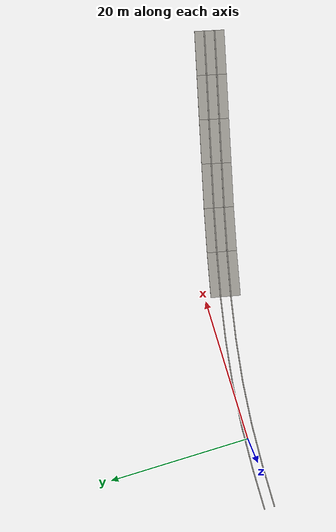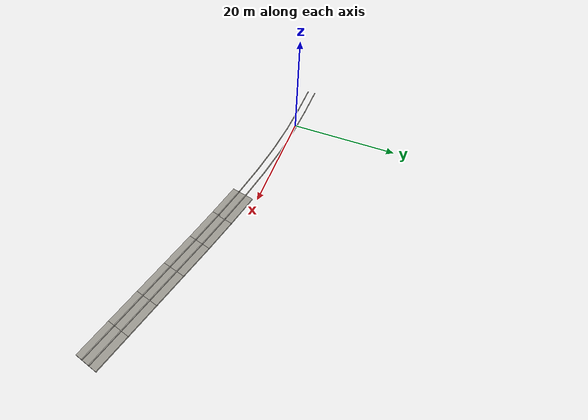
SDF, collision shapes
<sdf version="1.9">
 <model name="railway_turnout">
  <static>true</static>
  <plugin filename="gz-sim-label-system" name="gz::sim::systems::Label"><label>10</label></plugin>
  <link name="turnout_rails_and_ballast">
   <visual name="ballast_transition">
    <geometry><mesh><uri>model://railway_turnout/meshes/ballast_transition.obj</uri></mesh></geometry>
    <material>
     <ambient>0.38 0.38 0.36 1</ambient>
     <diffuse>0.60 0.59 0.56 1</diffuse>
     <pbr>
      <metal>
       <albedo_map>model://track_12m/materials/textures/ballast_albedo.png</albedo_map>
       <roughness>0.98</roughness>
       <metalness>0</metalness>
      </metal>
     </pbr>
    </material>
   </visual>
   <visual name="transition_sleeper_00">
    <pose>-5.700 -0.0390 0.235 0 0 0</pose>
    <geometry>
     <mesh><uri>model://pc_sleeper/meshes/pc_sleeper_concrete.obj</uri><scale>1 1.032465 1</scale></mesh>
    </geometry>
    <material>
     <ambient>0.47 0.47 0.45 1</ambient>
     <diffuse>0.68 0.68 0.65 1</diffuse>
     <pbr><metal><roughness>0.92</roughness><metalness>0</metalness></metal></pbr>
    </material>
   </visual>
   <visual name="transition_sleeper_01">
    <pose>-5.100 -0.0477 0.235 0 0 0</pose>
    <geometry>
     <mesh><uri>model://pc_sleeper/meshes/pc_sleeper_concrete.obj</uri><scale>1 1.039757 1</scale></mesh>
    </geometry>
    <material>
     <ambient>0.47 0.47 0.45 1</ambient>
     <diffuse>0.68 0.68 0.65 1</diffuse>
     <pbr><metal><roughness>0.92</roughness><metalness>0</metalness></metal></pbr>
    </material>
   </visual>
   <visual name="transition_sleeper_02">
    <pose>-4.500 -0.0565 0.235 0 0 0</pose>
    <geometry>
     <mesh><uri>model://pc_sleeper/meshes/pc_sleeper_concrete.obj</uri><scale>1 1.047049 1</scale></mesh>
    </geometry>
    <material>
     <ambient>0.47 0.47 0.45 1</ambient>
     <diffuse>0.68 0.68 0.65 1</diffuse>
     <pbr><metal><roughness>0.92</roughness><metalness>0</metalness></metal></pbr>
    </material>
   </visual>
   <visual name="transition_sleeper_03">
    <pose>-3.900 -0.0652 0.235 0 0 0</pose>
    <geometry>
     <mesh><uri>model://pc_sleeper/meshes/pc_sleeper_concrete.obj</uri><scale>1 1.054340 1</scale></mesh>
    </geometry>
    <material>
     <ambient>0.47 0.47 0.45 1</ambient>
     <diffuse>0.68 0.68 0.65 1</diffuse>
     <pbr><metal><roughness>0.92</roughness><metalness>0</metalness></metal></pbr>
    </material>
   </visual>
   <visual name="transition_sleeper_04">
    <pose>-3.300 -0.0740 0.235 0 0 0</pose>
    <geometry>
     <mesh><uri>model://pc_sleeper/meshes/pc_sleeper_concrete.obj</uri><scale>1 1.061632 1</scale></mesh>
    </geometry>
    <material>
     <ambient>0.47 0.47 0.45 1</ambient>
     <diffuse>0.68 0.68 0.65 1</diffuse>
     <pbr><metal><roughness>0.92</roughness><metalness>0</metalness></metal></pbr>
    </material>
   </visual>
   <visual name="transition_sleeper_05">
    <pose>-2.700 -0.0827 0.235 0 0 0</pose>
    <geometry>
     <mesh><uri>model://pc_sleeper/meshes/pc_sleeper_concrete.obj</uri><scale>1 1.068924 1</scale></mesh>
    </geometry>
    <material>
     <ambient>0.47 0.47 0.45 1</ambient>
     <diffuse>0.68 0.68 0.65 1</diffuse>
     <pbr><metal><roughness>0.92</roughness><metalness>0</metalness></metal></pbr>
    </material>
   </visual>
   <visual name="transition_sleeper_06">
    <pose>-2.100 -0.0915 0.235 0 0 0</pose>
    <geometry>
     <mesh><uri>model://pc_sleeper/meshes/pc_sleeper_concrete.obj</uri><scale>1 1.076215 1</scale></mesh>
    </geometry>
    <material>
     <ambient>0.47 0.47 0.45 1</ambient>
     <diffuse>0.68 0.68 0.65 1</diffuse>
     <pbr><metal><roughness>0.92</roughness><metalness>0</metalness></metal></pbr>
    </material>
   </visual>
   <visual name="transition_sleeper_07">
    <pose>-1.500 -0.1002 0.235 0 0 0</pose>
    <geometry>
     <mesh><uri>model://pc_sleeper/meshes/pc_sleeper_concrete.obj</uri><scale>1 1.083507 1</scale></mesh>
    </geometry>
    <material>
     <ambient>0.47 0.47 0.45 1</ambient>
     <diffuse>0.68 0.68 0.65 1</diffuse>
     <pbr><metal><roughness>0.92</roughness><metalness>0</metalness></metal></pbr>
    </material>
   </visual>
   <visual name="transition_sleeper_08">
    <pose>-0.900 -0.1109 0.235 0 0 0</pose>
    <geometry>
     <mesh><uri>model://pc_sleeper/meshes/pc_sleeper_concrete.obj</uri><scale>1 1.092431 1</scale></mesh>
    </geometry>
    <material>
     <ambient>0.47 0.47 0.45 1</ambient>
     <diffuse>0.68 0.68 0.65 1</diffuse>
     <pbr><metal><roughness>0.92</roughness><metalness>0</metalness></metal></pbr>
    </material>
   </visual>
   <visual name="transition_sleeper_09">
    <pose>-0.300 -0.1314 0.235 0 0 0</pose>
    <geometry>
     <mesh><uri>model://pc_sleeper/meshes/pc_sleeper_concrete.obj</uri><scale>1 1.109514 1</scale></mesh>
    </geometry>
    <material>
     <ambient>0.47 0.47 0.45 1</ambient>
     <diffuse>0.68 0.68 0.65 1</diffuse>
     <pbr><metal><roughness>0.92</roughness><metalness>0</metalness></metal></pbr>
    </material>
   </visual>
   <visual name="transition_sleeper_10">
    <pose>0.300 -0.1519 0.235 0 0 0</pose>
    <geometry>
     <mesh><uri>model://pc_sleeper/meshes/pc_sleeper_concrete.obj</uri><scale>1 1.126597 1</scale></mesh>
    </geometry>
    <material>
     <ambient>0.47 0.47 0.45 1</ambient>
     <diffuse>0.68 0.68 0.65 1</diffuse>
     <pbr><metal><roughness>0.92</roughness><metalness>0</metalness></metal></pbr>
    </material>
   </visual>
   <visual name="transition_sleeper_11">
    <pose>0.900 -0.1724 0.235 0 0 0</pose>
    <geometry>
     <mesh><uri>model://pc_sleeper/meshes/pc_sleeper_concrete.obj</uri><scale>1 1.143681 1</scale></mesh>
    </geometry>
    <material>
     <ambient>0.47 0.47 0.45 1</ambient>
     <diffuse>0.68 0.68 0.65 1</diffuse>
     <pbr><metal><roughness>0.92</roughness><metalness>0</metalness></metal></pbr>
    </material>
   </visual>
   <visual name="transition_sleeper_12">
    <pose>1.500 -0.1929 0.235 0 0 0</pose>
    <geometry>
     <mesh><uri>model://pc_sleeper/meshes/pc_sleeper_concrete.obj</uri><scale>1 1.160764 1</scale></mesh>
    </geometry>
    <material>
     <ambient>0.47 0.47 0.45 1</ambient>
     <diffuse>0.68 0.68 0.65 1</diffuse>
     <pbr><metal><roughness>0.92</roughness><metalness>0</metalness></metal></pbr>
    </material>
   </visual>
   <visual name="transition_sleeper_13">
    <pose>2.100 -0.2134 0.235 0 0 0</pose>
    <geometry>
     <mesh><uri>model://pc_sleeper/meshes/pc_sleeper_concrete.obj</uri><scale>1 1.177847 1</scale></mesh>
    </geometry>
    <material>
     <ambient>0.47 0.47 0.45 1</ambient>
     <diffuse>0.68 0.68 0.65 1</diffuse>
     <pbr><metal><roughness>0.92</roughness><metalness>0</metalness></metal></pbr>
    </material>
   </visual>
   <visual name="transition_sleeper_14">
    <pose>2.700 -0.2339 0.235 0 0 0</pose>
    <geometry>
     <mesh><uri>model://pc_sleeper/meshes/pc_sleeper_concrete.obj</uri><scale>1 1.194931 1</scale></mesh>
    </geometry>
    <material>
     <ambient>0.47 0.47 0.45 1</ambient>
     <diffuse>0.68 0.68 0.65 1</diffuse>
     <pbr><metal><roughness>0.92</roughness><metalness>0</metalness></metal></pbr>
    </material>
   </visual>
   <visual name="transition_sleeper_15">
    <pose>3.300 -0.2544 0.235 0 0 0</pose>
    <geometry>
     <mesh><uri>model://pc_sleeper/meshes/pc_sleeper_concrete.obj</uri><scale>1 1.212014 1</scale></mesh>
    </geometry>
    <material>
     <ambient>0.47 0.47 0.45 1</ambient>
     <diffuse>0.68 0.68 0.65 1</diffuse>
     <pbr><metal><roughness>0.92</roughness><metalness>0</metalness></metal></pbr>
    </material>
   </visual>
   <visual name="transition_sleeper_16">
    <pose>3.900 -0.2749 0.235 0 0 0</pose>
    <geometry>
     <mesh><uri>model://pc_sleeper/meshes/pc_sleeper_concrete.obj</uri><scale>1 1.229097 1</scale></mesh>
    </geometry>
    <material>
     <ambient>0.47 0.47 0.45 1</ambient>
     <diffuse>0.68 0.68 0.65 1</diffuse>
     <pbr><metal><roughness>0.92</roughness><metalness>0</metalness></metal></pbr>
    </material>
   </visual>
   <visual name="transition_sleeper_17">
    <pose>4.500 -0.2954 0.235 0 0 0</pose>
    <geometry>
     <mesh><uri>model://pc_sleeper/meshes/pc_sleeper_concrete.obj</uri><scale>1 1.246181 1</scale></mesh>
    </geometry>
    <material>
     <ambient>0.47 0.47 0.45 1</ambient>
     <diffuse>0.68 0.68 0.65 1</diffuse>
     <pbr><metal><roughness>0.92</roughness><metalness>0</metalness></metal></pbr>
    </material>
   </visual>
   <visual name="transition_sleeper_18">
    <pose>5.100 -0.3183 0.235 0 0 0</pose>
    <geometry>
     <mesh><uri>model://pc_sleeper/meshes/pc_sleeper_concrete.obj</uri><scale>1 1.265278 1</scale></mesh>
    </geometry>
    <material>
     <ambient>0.47 0.47 0.45 1</ambient>
     <diffuse>0.68 0.68 0.65 1</diffuse>
     <pbr><metal><roughness>0.92</roughness><metalness>0</metalness></metal></pbr>
    </material>
   </visual>
   <visual name="transition_sleeper_19">
    <pose>5.700 -0.3533 0.235 0 0 0</pose>
    <geometry>
     <mesh><uri>model://pc_sleeper/meshes/pc_sleeper_concrete.obj</uri><scale>1 1.294444 1</scale></mesh>
    </geometry>
    <material>
     <ambient>0.47 0.47 0.45 1</ambient>
     <diffuse>0.68 0.68 0.65 1</diffuse>
     <pbr><metal><roughness>0.92</roughness><metalness>0</metalness></metal></pbr>
    </material>
   </visual>
   <visual name="transition_sleeper_20">
    <pose>6.300 -0.3883 0.235 0 0 0</pose>
    <geometry>
     <mesh><uri>model://pc_sleeper/meshes/pc_sleeper_concrete.obj</uri><scale>1 1.323611 1</scale></mesh>
    </geometry>
    <material>
     <ambient>0.47 0.47 0.45 1</ambient>
     <diffuse>0.68 0.68 0.65 1</diffuse>
     <pbr><metal><roughness>0.92</roughness><metalness>0</metalness></metal></pbr>
    </material>
   </visual>
   <visual name="transition_sleeper_21">
    <pose>6.900 -0.4233 0.235 0 0 0</pose>
    <geometry>
     <mesh><uri>model://pc_sleeper/meshes/pc_sleeper_concrete.obj</uri><scale>1 1.352778 1</scale></mesh>
    </geometry>
    <material>
     <ambient>0.47 0.47 0.45 1</ambient>
     <diffuse>0.68 0.68 0.65 1</diffuse>
     <pbr><metal><roughness>0.92</roughness><metalness>0</metalness></metal></pbr>
    </material>
   </visual>
   <visual name="transition_sleeper_22">
    <pose>7.500 -0.4583 0.235 0 0 0</pose>
    <geometry>
     <mesh><uri>model://pc_sleeper/meshes/pc_sleeper_concrete.obj</uri><scale>1 1.381944 1</scale></mesh>
    </geometry>
    <material>
     <ambient>0.47 0.47 0.45 1</ambient>
     <diffuse>0.68 0.68 0.65 1</diffuse>
     <pbr><metal><roughness>0.92</roughness><metalness>0</metalness></metal></pbr>
    </material>
   </visual>
   <visual name="transition_sleeper_23">
    <pose>8.100 -0.4933 0.235 0 0 0</pose>
    <geometry>
     <mesh><uri>model://pc_sleeper/meshes/pc_sleeper_concrete.obj</uri><scale>1 1.411111 1</scale></mesh>
    </geometry>
    <material>
     <ambient>0.47 0.47 0.45 1</ambient>
     <diffuse>0.68 0.68 0.65 1</diffuse>
     <pbr><metal><roughness>0.92</roughness><metalness>0</metalness></metal></pbr>
    </material>
   </visual>
   <visual name="transition_sleeper_24">
    <pose>8.700 -0.5283 0.235 0 0 0</pose>
    <geometry>
     <mesh><uri>model://pc_sleeper/meshes/pc_sleeper_concrete.obj</uri><scale>1 1.440278 1</scale></mesh>
    </geometry>
    <material>
     <ambient>0.47 0.47 0.45 1</ambient>
     <diffuse>0.68 0.68 0.65 1</diffuse>
     <pbr><metal><roughness>0.92</roughness><metalness>0</metalness></metal></pbr>
    </material>
   </visual>
   <visual name="transition_sleeper_25">
    <pose>9.300 -0.5633 0.235 0 0 0</pose>
    <geometry>
     <mesh><uri>model://pc_sleeper/meshes/pc_sleeper_concrete.obj</uri><scale>1 1.469444 1</scale></mesh>
    </geometry>
    <material>
     <ambient>0.47 0.47 0.45 1</ambient>
     <diffuse>0.68 0.68 0.65 1</diffuse>
     <pbr><metal><roughness>0.92</roughness><metalness>0</metalness></metal></pbr>
    </material>
   </visual>
   <visual name="transition_sleeper_26">
    <pose>9.900 -0.5983 0.235 0 0 0</pose>
    <geometry>
     <mesh><uri>model://pc_sleeper/meshes/pc_sleeper_concrete.obj</uri><scale>1 1.498611 1</scale></mesh>
    </geometry>
    <material>
     <ambient>0.47 0.47 0.45 1</ambient>
     <diffuse>0.68 0.68 0.65 1</diffuse>
     <pbr><metal><roughness>0.92</roughness><metalness>0</metalness></metal></pbr>
    </material>
   </visual>
   <visual name="transition_sleeper_27">
    <pose>10.500 -0.6333 0.235 0 0 0</pose>
    <geometry>
     <mesh><uri>model://pc_sleeper/meshes/pc_sleeper_concrete.obj</uri><scale>1 1.527778 1</scale></mesh>
    </geometry>
    <material>
     <ambient>0.47 0.47 0.45 1</ambient>
     <diffuse>0.68 0.68 0.65 1</diffuse>
     <pbr><metal><roughness>0.92</roughness><metalness>0</metalness></metal></pbr>
    </material>
   </visual>
   <visual name="transition_sleeper_28">
    <pose>11.100 -0.6706 0.235 0 0 0</pose>
    <geometry>
     <mesh><uri>model://pc_sleeper/meshes/pc_sleeper_concrete.obj</uri><scale>1 1.558854 1</scale></mesh>
    </geometry>
    <material>
     <ambient>0.47 0.47 0.45 1</ambient>
     <diffuse>0.68 0.68 0.65 1</diffuse>
     <pbr><metal><roughness>0.92</roughness><metalness>0</metalness></metal></pbr>
    </material>
   </visual>
   <visual name="transition_sleeper_29">
    <pose>11.700 -0.7194 0.235 0 0 0</pose>
    <geometry>
     <mesh><uri>model://pc_sleeper/meshes/pc_sleeper_concrete.obj</uri><scale>1 1.599479 1</scale></mesh>
    </geometry>
    <material>
     <ambient>0.47 0.47 0.45 1</ambient>
     <diffuse>0.68 0.68 0.65 1</diffuse>
     <pbr><metal><roughness>0.92</roughness><metalness>0</metalness></metal></pbr>
    </material>
   </visual>
   <visual name="transition_sleeper_30">
    <pose>12.300 -0.7681 0.235 0 0 0</pose>
    <geometry>
     <mesh><uri>model://pc_sleeper/meshes/pc_sleeper_concrete.obj</uri><scale>1 1.640104 1</scale></mesh>
    </geometry>
    <material>
     <ambient>0.47 0.47 0.45 1</ambient>
     <diffuse>0.68 0.68 0.65 1</diffuse>
     <pbr><metal><roughness>0.92</roughness><metalness>0</metalness></metal></pbr>
    </material>
   </visual>
   <visual name="transition_sleeper_31">
    <pose>12.900 -0.8169 0.235 0 0 0</pose>
    <geometry>
     <mesh><uri>model://pc_sleeper/meshes/pc_sleeper_concrete.obj</uri><scale>1 1.680729 1</scale></mesh>
    </geometry>
    <material>
     <ambient>0.47 0.47 0.45 1</ambient>
     <diffuse>0.68 0.68 0.65 1</diffuse>
     <pbr><metal><roughness>0.92</roughness><metalness>0</metalness></metal></pbr>
    </material>
   </visual>
   <visual name="transition_sleeper_32">
    <pose>13.500 -0.8656 0.235 0 0 0</pose>
    <geometry>
     <mesh><uri>model://pc_sleeper/meshes/pc_sleeper_concrete.obj</uri><scale>1 1.721354 1</scale></mesh>
    </geometry>
    <material>
     <ambient>0.47 0.47 0.45 1</ambient>
     <diffuse>0.68 0.68 0.65 1</diffuse>
     <pbr><metal><roughness>0.92</roughness><metalness>0</metalness></metal></pbr>
    </material>
   </visual>
   <visual name="transition_sleeper_33">
    <pose>14.100 -0.9144 0.235 0 0 0</pose>
    <geometry>
     <mesh><uri>model://pc_sleeper/meshes/pc_sleeper_concrete.obj</uri><scale>1 1.761979 1</scale></mesh>
    </geometry>
    <material>
     <ambient>0.47 0.47 0.45 1</ambient>
     <diffuse>0.68 0.68 0.65 1</diffuse>
     <pbr><metal><roughness>0.92</roughness><metalness>0</metalness></metal></pbr>
    </material>
   </visual>
   <collision name="rail_l_collision_0">
    <pose>-6.9904 0.6774 0.516 0 0 -0.013333</pose>
    <geometry><box><size>6.0505 0.145 0.192</size></box></geometry>
   </collision>
   <collision name="rail_r_collision_0">
    <pose>-7.009566 -0.757436 0.516000 0.000000 0.000000 -0.013333</pose>
    <geometry><box><size>6.0505 0.145 0.192</size></box></geometry>
   </collision>
   <collision name="rail_l_collision_1">
    <pose>-0.9677 0.5018 0.516 0 0 -0.044970</pose>
    <geometry><box><size>6.0561 0.145 0.192</size></box></geometry>
   </collision>
   <collision name="rail_r_collision_1">
    <pose>-1.032255 -0.931775 0.516000 0.000000 0.000000 -0.044970</pose>
    <geometry><box><size>6.0561 0.145 0.192</size></box></geometry>
   </collision>
   <collision name="rail_l_collision_2">
    <pose>5.0655 0.0895 0.516 0 0 -0.091411</pose>
    <geometry><box><size>6.0752 0.145 0.192</size></box></geometry>
   </collision>
   <collision name="rail_r_collision_2">
    <pose>4.934504 -1.339504 0.516000 0.000000 0.000000 -0.091411</pose>
    <geometry><box><size>6.0752 0.145 0.192</size></box></geometry>
   </collision>
   <collision name="rail_l_collision_3">
    <pose>11.1006 -0.6146 0.516 0 0 -0.140730</pose>
    <geometry><box><size>6.1099 0.145 0.192</size></box></geometry>
   </collision>
   <collision name="rail_r_collision_3">
    <pose>10.899359 -2.035407 0.516000 0.000000 0.000000 -0.140730</pose>
    <geometry><box><size>6.1099 0.145 0.192</size></box></geometry>
   </collision>
   <collision name="rail_l_collision_4">
    <pose>17.1294 -1.5943 0.516 0 0 -0.181320</pose>
    <geometry><box><size>6.1500 0.145 0.192</size></box></geometry>
   </collision>
   <collision name="rail_r_collision_4">
    <pose>16.870615 -3.005738 0.516000 0.000000 0.000000 -0.181320</pose>
    <geometry><box><size>6.1500 0.145 0.192</size></box></geometry>
   </collision>
   <collision name="ballast_collision_5">
    <pose>23.0000 -3.5000 0.17 0 0 -0.213369</pose>
    <geometry><box><size>6.2892 4.15 0.34</size></box></geometry>
   </collision>
   <visual name="ballast_5">
    <pose>23.000000 -3.500000 0.000000 0.000000 0.000000 -0.213369</pose>
    <geometry>
     <mesh><uri>model://track_12m/meshes/ballast_bed.obj</uri><scale>0.5266000 1 1</scale></mesh>
    </geometry>
    <material>
     <diffuse>0.60 0.59 0.56 1</diffuse>
     <pbr>
      <metal>
       <albedo_map>model://track_12m/materials/textures/ballast_albedo.png</albedo_map>
       <roughness>0.98</roughness>
       <metalness>0</metalness>
      </metal>
     </pbr>
     <ambient>0.38 0.38 0.36 1</ambient>
    </material>
   </visual>
   <collision name="rail_l_collision_5">
    <pose>23.1519 -2.7988 0.516 0 0 -0.213369</pose>
    <geometry><box><size>6.1892 0.145 0.192</size></box></geometry>
   </collision>
   <collision name="rail_r_collision_5">
    <pose>22.848067 -4.201229 0.516000 0.000000 0.000000 -0.213369</pose>
    <geometry><box><size>6.1892 0.145 0.192</size></box></geometry>
   </collision>
   <collision name="ballast_collision_6">
    <pose>29.0000 -4.8500 0.17 0 0 -0.229232</pose>
    <geometry><box><size>6.3112 4.15 0.34</size></box></geometry>
   </collision>
   <visual name="ballast_6">
    <pose>29.000000 -4.850000 0.000000 0.000000 0.000000 -0.229232</pose>
    <geometry>
     <mesh><uri>model://track_12m/meshes/ballast_bed.obj</uri><scale>0.5284333 1 1</scale></mesh>
    </geometry>
    <material>
     <diffuse>0.60 0.59 0.56 1</diffuse>
     <pbr>
      <metal>
       <albedo_map>model://track_12m/materials/textures/ballast_albedo.png</albedo_map>
       <roughness>0.98</roughness>
       <metalness>0</metalness>
      </metal>
     </pbr>
     <ambient>0.38 0.38 0.36 1</ambient>
    </material>
   </visual>
   <collision name="rail_l_collision_6">
    <pose>29.1630 -4.1513 0.516 0 0 -0.229232</pose>
    <geometry><box><size>6.2112 0.145 0.192</size></box></geometry>
   </collision>
   <collision name="rail_r_collision_6">
    <pose>28.836963 -5.548731 0.516000 0.000000 0.000000 -0.229232</pose>
    <geometry><box><size>6.2112 0.145 0.192</size></box></geometry>
   </collision>
   <collision name="ballast_collision_7">
    <pose>35.0000 -6.3000 0.17 0 0 -0.244979</pose>
    <geometry><box><size>6.3347 4.15 0.34</size></box></geometry>
   </collision>
   <visual name="ballast_7">
    <pose>35.000000 -6.300000 0.000000 0.000000 0.000000 -0.244979</pose>
    <geometry>
     <mesh><uri>model://track_12m/meshes/ballast_bed.obj</uri><scale>0.5303917 1 1</scale></mesh>
    </geometry>
    <material>
     <diffuse>0.60 0.59 0.56 1</diffuse>
     <pbr>
      <metal>
       <albedo_map>model://track_12m/materials/textures/ballast_albedo.png</albedo_map>
       <roughness>0.98</roughness>
       <metalness>0</metalness>
      </metal>
     </pbr>
     <ambient>0.38 0.38 0.36 1</ambient>
    </material>
   </visual>
   <collision name="rail_l_collision_7">
    <pose>35.1740 -5.6039 0.516 0 0 -0.244979</pose>
    <geometry><box><size>6.2347 0.145 0.192</size></box></geometry>
   </collision>
   <collision name="rail_r_collision_7">
    <pose>34.825980 -6.996077 0.516000 0.000000 0.000000 -0.244979</pose>
    <geometry><box><size>6.2347 0.145 0.192</size></box></geometry>
   </collision>
   <collision name="ballast_collision_8">
    <pose>41.0000 -7.8000 0.17 0 0 -0.244979</pose>
    <geometry><box><size>6.3347 4.15 0.34</size></box></geometry>
   </collision>
   <visual name="ballast_8">
    <pose>41.000000 -7.800000 0.000000 0.000000 0.000000 -0.244979</pose>
    <geometry>
     <mesh><uri>model://track_12m/meshes/ballast_bed.obj</uri><scale>0.5303917 1 1</scale></mesh>
    </geometry>
    <material>
     <diffuse>0.60 0.59 0.56 1</diffuse>
     <pbr>
      <metal>
       <albedo_map>model://track_12m/materials/textures/ballast_albedo.png</albedo_map>
       <roughness>0.98</roughness>
       <metalness>0</metalness>
      </metal>
     </pbr>
     <ambient>0.38 0.38 0.36 1</ambient>
    </material>
   </visual>
   <collision name="rail_l_collision_8">
    <pose>41.1740 -7.1039 0.516 0 0 -0.244979</pose>
    <geometry><box><size>6.2347 0.145 0.192</size></box></geometry>
   </collision>
   <collision name="rail_r_collision_8">
    <pose>40.825980 -8.496077 0.516000 0.000000 0.000000 -0.244979</pose>
    <geometry><box><size>6.2347 0.145 0.192</size></box></geometry>
   </collision>
   <collision name="ballast_collision_9">
    <pose>47.0000 -9.3000 0.17 0 0 -0.244979</pose>
    <geometry><box><size>6.3347 4.15 0.34</size></box></geometry>
   </collision>
   <visual name="ballast_9">
    <pose>47.000000 -9.300000 0.000000 0.000000 0.000000 -0.244979</pose>
    <geometry>
     <mesh><uri>model://track_12m/meshes/ballast_bed.obj</uri><scale>0.5303917 1 1</scale></mesh>
    </geometry>
    <material>
     <diffuse>0.60 0.59 0.56 1</diffuse>
     <pbr>
      <metal>
       <albedo_map>model://track_12m/materials/textures/ballast_albedo.png</albedo_map>
       <roughness>0.98</roughness>
       <metalness>0</metalness>
      </metal>
     </pbr>
     <ambient>0.38 0.38 0.36 1</ambient>
    </material>
   </visual>
   <collision name="rail_l_collision_9">
    <pose>47.1740 -8.6039 0.516 0 0 -0.244979</pose>
    <geometry><box><size>6.2347 0.145 0.192</size></box></geometry>
   </collision>
   <collision name="rail_r_collision_9">
    <pose>46.825980 -9.996077 0.516000 0.000000 0.000000 -0.244979</pose>
    <geometry><box><size>6.2347 0.145 0.192</size></box></geometry>
   </collision>
   <collision name="ballast_collision_10">
    <pose>53.0000 -10.8000 0.17 0 0 -0.244979</pose>
    <geometry><box><size>6.3347 4.15 0.34</size></box></geometry>
   </collision>
   <visual name="ballast_10">
    <pose>53.000000 -10.800000 0.000000 0.000000 0.000000 -0.244979</pose>
    <geometry>
     <mesh><uri>model://track_12m/meshes/ballast_bed.obj</uri><scale>0.5303917 1 1</scale></mesh>
    </geometry>
    <material>
     <diffuse>0.60 0.59 0.56 1</diffuse>
     <pbr>
      <metal>
       <albedo_map>model://track_12m/materials/textures/ballast_albedo.png</albedo_map>
       <roughness>0.98</roughness>
       <metalness>0</metalness>
      </metal>
     </pbr>
     <ambient>0.38 0.38 0.36 1</ambient>
    </material>
   </visual>
   <collision name="rail_l_collision_10">
    <pose>53.1740 -10.1039 0.516 0 0 -0.244979</pose>
    <geometry><box><size>6.2347 0.145 0.192</size></box></geometry>
   </collision>
   <collision name="rail_r_collision_10">
    <pose>52.825980 -11.496077 0.516000 0.000000 0.000000 -0.244979</pose>
    <geometry><box><size>6.2347 0.145 0.192</size></box></geometry>
   </collision>
   <visual name="point_blade_inner">
    <pose>-4.0 -0.19 0.588 0 0 -0.025</pose>
    <geometry><box><size>11.8 0.045 0.048</size></box></geometry>
    <material>
     <ambient>0.13 0.09 0.065 1</ambient>
     <diffuse>0.31 0.22 0.16 1</diffuse>
     <specular>0.72 0.72 0.72 1</specular>
     <pbr><metal><roughness>0.48</roughness><metalness>0.72</metalness></metal></pbr>
    </material>
   </visual>
   <visual name="check_rail_main">
    <pose>8.0 0.49 0.588 0 0 0</pose>
    <geometry><box><size>7.0 0.055 0.050</size></box></geometry>
    <material>
     <ambient>0.13 0.09 0.065 1</ambient>
     <diffuse>0.31 0.22 0.16 1</diffuse>
     <specular>0.72 0.72 0.72 1</specular>
     <pbr><metal><roughness>0.48</roughness><metalness>0.72</metalness></metal></pbr>
    </material>
   </visual>
   <visual name="check_rail_branch">
    <pose>8.1 -1.41 0.588 0 0 -0.12</pose>
    <geometry><box><size>7.0 0.055 0.050</size></box></geometry>
    <material>
     <ambient>0.13 0.09 0.065 1</ambient>
     <diffuse>0.31 0.22 0.16 1</diffuse>
     <specular>0.72 0.72 0.72 1</specular>
     <pbr><metal><roughness>0.48</roughness><metalness>0.72</metalness></metal></pbr>
    </material>
   </visual>
   <visual name="switch_motor">
    <pose>-5.0 2.10 0.56 0 0 0</pose>
    <geometry><box><size>1.15 0.72 0.45</size></box></geometry>
    <material>
     <diffuse>0.18 0.22 0.20 1</diffuse>
     <pbr><metal><roughness>0.54</roughness><metalness>0.48</metalness></metal></pbr>
    </material>
   </visual>
   <visual name="switch_rod">
    <pose>-4.2 1.20 0.48 0 0 -0.25</pose>
    <geometry><box><size>2.10 0.07 0.07</size></box></geometry>
    <material><diffuse>0.36 0.37 0.35 1</diffuse></material>
   </visual>
   <visual name="buffer_beam">
    <pose>56.5 -11.68 0.92 0 0 -0.245</pose>
    <geometry><box><size>0.24 2.45 0.22</size></box></geometry>
    <material><diffuse>0.88 0.72 0.08 1</diffuse></material>
   </visual>
   <visual name="buffer_post_l">
    <pose>56.2 -10.85 0.63 0 0 -0.245</pose>
    <geometry><box><size>0.20 0.20 0.92</size></box></geometry>
    <material><diffuse>0.24 0.25 0.24 1</diffuse></material>
   </visual>
   <visual name="buffer_post_r">
    <pose>56.7 -12.48 0.63 0 0 -0.245</pose>
    <geometry><box><size>0.20 0.20 0.92</size></box></geometry>
    <material><diffuse>0.24 0.25 0.24 1</diffuse></material>
   </visual>
   <visual name="branch_rail_left_0">
    <pose>-6.990400 0.677400 0.459 0 0 -0.013333</pose>
    <geometry>
     <mesh><uri>model://track_12m/meshes/rail_profile_12m.obj</uri><scale>0.5067083 1 1</scale></mesh>
    </geometry>
    <material>
     <ambient>0.13 0.09 0.065 1</ambient>
     <diffuse>0.31 0.22 0.16 1</diffuse>
     <specular>0.30 0.25 0.20 1</specular>
     <pbr><metal><roughness>0.48</roughness><metalness>0.72</metalness></metal></pbr>
    </material>
   </visual>
   <visual name="branch_rail_right_0">
    <pose>-7.009532 -0.757472 0.459 0 0 -0.013333</pose>
    <geometry>
     <mesh><uri>model://track_12m/meshes/rail_profile_12m.obj</uri><scale>0.5067083 1 1</scale></mesh>
    </geometry>
    <material>
     <ambient>0.13 0.09 0.065 1</ambient>
     <diffuse>0.31 0.22 0.16 1</diffuse>
     <specular>0.30 0.25 0.20 1</specular>
     <pbr><metal><roughness>0.48</roughness><metalness>0.72</metalness></metal></pbr>
    </material>
   </visual>
   <visual name="branch_rail_left_1">
    <pose>-0.967700 0.501800 0.459 0 0 -0.044970</pose>
    <geometry>
     <mesh><uri>model://track_12m/meshes/rail_profile_12m.obj</uri><scale>0.5071750 1 1</scale></mesh>
    </geometry>
    <material>
     <ambient>0.13 0.09 0.065 1</ambient>
     <diffuse>0.31 0.22 0.16 1</diffuse>
     <specular>0.30 0.25 0.20 1</specular>
     <pbr><metal><roughness>0.48</roughness><metalness>0.72</metalness></metal></pbr>
    </material>
   </visual>
   <visual name="branch_rail_right_1">
    <pose>-1.032210 -0.931749 0.459 0 0 -0.044970</pose>
    <geometry>
     <mesh><uri>model://track_12m/meshes/rail_profile_12m.obj</uri><scale>0.5071750 1 1</scale></mesh>
    </geometry>
    <material>
     <ambient>0.13 0.09 0.065 1</ambient>
     <diffuse>0.31 0.22 0.16 1</diffuse>
     <specular>0.30 0.25 0.20 1</specular>
     <pbr><metal><roughness>0.48</roughness><metalness>0.72</metalness></metal></pbr>
    </material>
   </visual>
   <visual name="branch_rail_left_2">
    <pose>5.065500 0.089500 0.459 0 0 -0.091411</pose>
    <geometry>
     <mesh><uri>model://track_12m/meshes/rail_profile_12m.obj</uri><scale>0.5087667 1 1</scale></mesh>
    </geometry>
    <material>
     <ambient>0.13 0.09 0.065 1</ambient>
     <diffuse>0.31 0.22 0.16 1</diffuse>
     <specular>0.30 0.25 0.20 1</specular>
     <pbr><metal><roughness>0.48</roughness><metalness>0.72</metalness></metal></pbr>
    </material>
   </visual>
   <visual name="branch_rail_right_2">
    <pose>4.934508 -1.339509 0.459 0 0 -0.091411</pose>
    <geometry>
     <mesh><uri>model://track_12m/meshes/rail_profile_12m.obj</uri><scale>0.5087667 1 1</scale></mesh>
    </geometry>
    <material>
     <ambient>0.13 0.09 0.065 1</ambient>
     <diffuse>0.31 0.22 0.16 1</diffuse>
     <specular>0.30 0.25 0.20 1</specular>
     <pbr><metal><roughness>0.48</roughness><metalness>0.72</metalness></metal></pbr>
    </material>
   </visual>
   <visual name="branch_rail_left_3">
    <pose>11.100600 -0.614600 0.459 0 0 -0.140730</pose>
    <geometry>
     <mesh><uri>model://track_12m/meshes/rail_profile_12m.obj</uri><scale>0.5116583 1 1</scale></mesh>
    </geometry>
    <material>
     <ambient>0.13 0.09 0.065 1</ambient>
     <diffuse>0.31 0.22 0.16 1</diffuse>
     <specular>0.30 0.25 0.20 1</specular>
     <pbr><metal><roughness>0.48</roughness><metalness>0.72</metalness></metal></pbr>
    </material>
   </visual>
   <visual name="branch_rail_right_3">
    <pose>10.899318 -2.035413 0.459 0 0 -0.140730</pose>
    <geometry>
     <mesh><uri>model://track_12m/meshes/rail_profile_12m.obj</uri><scale>0.5116583 1 1</scale></mesh>
    </geometry>
    <material>
     <ambient>0.13 0.09 0.065 1</ambient>
     <diffuse>0.31 0.22 0.16 1</diffuse>
     <specular>0.30 0.25 0.20 1</specular>
     <pbr><metal><roughness>0.48</roughness><metalness>0.72</metalness></metal></pbr>
    </material>
   </visual>
   <visual name="branch_rail_left_4">
    <pose>17.129400 -1.594300 0.459 0 0 -0.181320</pose>
    <geometry>
     <mesh><uri>model://track_12m/meshes/rail_profile_12m.obj</uri><scale>0.5150000 1 1</scale></mesh>
    </geometry>
    <material>
     <ambient>0.13 0.09 0.065 1</ambient>
     <diffuse>0.31 0.22 0.16 1</diffuse>
     <specular>0.30 0.25 0.20 1</specular>
     <pbr><metal><roughness>0.48</roughness><metalness>0.72</metalness></metal></pbr>
    </material>
   </visual>
   <visual name="branch_rail_right_4">
    <pose>16.870629 -3.005775 0.459 0 0 -0.181320</pose>
    <geometry>
     <mesh><uri>model://track_12m/meshes/rail_profile_12m.obj</uri><scale>0.5150000 1 1</scale></mesh>
    </geometry>
    <material>
     <ambient>0.13 0.09 0.065 1</ambient>
     <diffuse>0.31 0.22 0.16 1</diffuse>
     <specular>0.30 0.25 0.20 1</specular>
     <pbr><metal><roughness>0.48</roughness><metalness>0.72</metalness></metal></pbr>
    </material>
   </visual>
   <visual name="branch_rail_left_5">
    <pose>23.151900 -2.798800 0.459 0 0 -0.213369</pose>
    <geometry>
     <mesh><uri>model://track_12m/meshes/rail_profile_12m.obj</uri><scale>0.5182667 1 1</scale></mesh>
    </geometry>
    <material>
     <ambient>0.13 0.09 0.065 1</ambient>
     <diffuse>0.31 0.22 0.16 1</diffuse>
     <specular>0.30 0.25 0.20 1</specular>
     <pbr><metal><roughness>0.48</roughness><metalness>0.72</metalness></metal></pbr>
    </material>
   </visual>
   <visual name="branch_rail_right_5">
    <pose>22.848033 -4.201259 0.459 0 0 -0.213369</pose>
    <geometry>
     <mesh><uri>model://track_12m/meshes/rail_profile_12m.obj</uri><scale>0.5182667 1 1</scale></mesh>
    </geometry>
    <material>
     <ambient>0.13 0.09 0.065 1</ambient>
     <diffuse>0.31 0.22 0.16 1</diffuse>
     <specular>0.30 0.25 0.20 1</specular>
     <pbr><metal><roughness>0.48</roughness><metalness>0.72</metalness></metal></pbr>
    </material>
   </visual>
   <visual name="branch_rail_left_6">
    <pose>29.163000 -4.151300 0.459 0 0 -0.229232</pose>
    <geometry>
     <mesh><uri>model://track_12m/meshes/rail_profile_12m.obj</uri><scale>0.5201000 1 1</scale></mesh>
    </geometry>
    <material>
     <ambient>0.13 0.09 0.065 1</ambient>
     <diffuse>0.31 0.22 0.16 1</diffuse>
     <specular>0.30 0.25 0.20 1</specular>
     <pbr><metal><roughness>0.48</roughness><metalness>0.72</metalness></metal></pbr>
    </material>
   </visual>
   <visual name="branch_rail_right_6">
    <pose>28.836925 -5.548762 0.459 0 0 -0.229232</pose>
    <geometry>
     <mesh><uri>model://track_12m/meshes/rail_profile_12m.obj</uri><scale>0.5201000 1 1</scale></mesh>
    </geometry>
    <material>
     <ambient>0.13 0.09 0.065 1</ambient>
     <diffuse>0.31 0.22 0.16 1</diffuse>
     <specular>0.30 0.25 0.20 1</specular>
     <pbr><metal><roughness>0.48</roughness><metalness>0.72</metalness></metal></pbr>
    </material>
   </visual>
   <visual name="branch_rail_left_7">
    <pose>35.174000 -5.603900 0.459 0 0 -0.244979</pose>
    <geometry>
     <mesh><uri>model://track_12m/meshes/rail_profile_12m.obj</uri><scale>0.5220583 1 1</scale></mesh>
    </geometry>
    <material>
     <ambient>0.13 0.09 0.065 1</ambient>
     <diffuse>0.31 0.22 0.16 1</diffuse>
     <specular>0.30 0.25 0.20 1</specular>
     <pbr><metal><roughness>0.48</roughness><metalness>0.72</metalness></metal></pbr>
    </material>
   </visual>
   <visual name="branch_rail_right_7">
    <pose>34.825961 -6.996054 0.459 0 0 -0.244979</pose>
    <geometry>
     <mesh><uri>model://track_12m/meshes/rail_profile_12m.obj</uri><scale>0.5220583 1 1</scale></mesh>
    </geometry>
    <material>
     <ambient>0.13 0.09 0.065 1</ambient>
     <diffuse>0.31 0.22 0.16 1</diffuse>
     <specular>0.30 0.25 0.20 1</specular>
     <pbr><metal><roughness>0.48</roughness><metalness>0.72</metalness></metal></pbr>
    </material>
   </visual>
   <visual name="branch_rail_left_8">
    <pose>41.174000 -7.103900 0.459 0 0 -0.244979</pose>
    <geometry>
     <mesh><uri>model://track_12m/meshes/rail_profile_12m.obj</uri><scale>0.5220583 1 1</scale></mesh>
    </geometry>
    <material>
     <ambient>0.13 0.09 0.065 1</ambient>
     <diffuse>0.31 0.22 0.16 1</diffuse>
     <specular>0.30 0.25 0.20 1</specular>
     <pbr><metal><roughness>0.48</roughness><metalness>0.72</metalness></metal></pbr>
    </material>
   </visual>
   <visual name="branch_rail_right_8">
    <pose>40.825961 -8.496054 0.459 0 0 -0.244979</pose>
    <geometry>
     <mesh><uri>model://track_12m/meshes/rail_profile_12m.obj</uri><scale>0.5220583 1 1</scale></mesh>
    </geometry>
    <material>
     <ambient>0.13 0.09 0.065 1</ambient>
     <diffuse>0.31 0.22 0.16 1</diffuse>
     <specular>0.30 0.25 0.20 1</specular>
     <pbr><metal><roughness>0.48</roughness><metalness>0.72</metalness></metal></pbr>
    </material>
   </visual>
   <visual name="branch_rail_left_9">
    <pose>47.174000 -8.603900 0.459 0 0 -0.244979</pose>
    <geometry>
     <mesh><uri>model://track_12m/meshes/rail_profile_12m.obj</uri><scale>0.5220583 1 1</scale></mesh>
    </geometry>
    <material>
     <ambient>0.13 0.09 0.065 1</ambient>
     <diffuse>0.31 0.22 0.16 1</diffuse>
     <specular>0.30 0.25 0.20 1</specular>
     <pbr><metal><roughness>0.48</roughness><metalness>0.72</metalness></metal></pbr>
    </material>
   </visual>
   <visual name="branch_rail_right_9">
    <pose>46.825961 -9.996054 0.459 0 0 -0.244979</pose>
    <geometry>
     <mesh><uri>model://track_12m/meshes/rail_profile_12m.obj</uri><scale>0.5220583 1 1</scale></mesh>
    </geometry>
    <material>
     <ambient>0.13 0.09 0.065 1</ambient>
     <diffuse>0.31 0.22 0.16 1</diffuse>
     <specular>0.30 0.25 0.20 1</specular>
     <pbr><metal><roughness>0.48</roughness><metalness>0.72</metalness></metal></pbr>
    </material>
   </visual>
   <visual name="branch_rail_left_10">
    <pose>53.174000 -10.103900 0.459 0 0 -0.244979</pose>
    <geometry>
     <mesh><uri>model://track_12m/meshes/rail_profile_12m.obj</uri><scale>0.5220583 1 1</scale></mesh>
    </geometry>
    <material>
     <ambient>0.13 0.09 0.065 1</ambient>
     <diffuse>0.31 0.22 0.16 1</diffuse>
     <specular>0.30 0.25 0.20 1</specular>
     <pbr><metal><roughness>0.48</roughness><metalness>0.72</metalness></metal></pbr>
    </material>
   </visual>
   <visual name="branch_rail_right_10">
    <pose>52.825961 -11.496054 0.459 0 0 -0.244979</pose>
    <geometry>
     <mesh><uri>model://track_12m/meshes/rail_profile_12m.obj</uri><scale>0.5220583 1 1</scale></mesh>
    </geometry>
    <material>
     <ambient>0.13 0.09 0.065 1</ambient>
     <diffuse>0.31 0.22 0.16 1</diffuse>
     <specular>0.30 0.25 0.20 1</specular>
     <pbr><metal><roughness>0.48</roughness><metalness>0.72</metalness></metal></pbr>
    </material>
   </visual>
   <visual name="branch_running_band_left_0">
    <pose>-6.990451 0.673600 0.6155 0 0 -0.013333</pose>
    <geometry><box><size>6.08050 0.058 0.006</size></box></geometry>
    <material>
     <ambient>0.42 0.43 0.43 1</ambient>
     <diffuse>0.66 0.67 0.67 1</diffuse>
     <specular>0.92 0.92 0.92 1</specular>
     <pbr><metal><roughness>0.18</roughness><metalness>0.92</metalness></metal></pbr>
    </material>
   </visual>
   <visual name="branch_gauge_wear_left_0">
    <pose>-6.990853 0.643403 0.586 0 0 -0.013333</pose>
    <geometry><box><size>6.08050 0.004 0.034</size></box></geometry>
    <material><diffuse>0.47 0.48 0.48 1</diffuse><specular>0.72 0.72 0.72 1</specular></material>
   </visual>
   <visual name="branch_running_band_right_0">
    <pose>-7.009481 -0.753672 0.6155 0 0 -0.013333</pose>
    <geometry><box><size>6.08050 0.058 0.006</size></box></geometry>
    <material>
     <ambient>0.42 0.43 0.43 1</ambient>
     <diffuse>0.66 0.67 0.67 1</diffuse>
     <specular>0.92 0.92 0.92 1</specular>
     <pbr><metal><roughness>0.18</roughness><metalness>0.92</metalness></metal></pbr>
    </material>
   </visual>
   <visual name="branch_gauge_wear_right_0">
    <pose>-7.009079 -0.723475 0.586 0 0 -0.013333</pose>
    <geometry><box><size>6.08050 0.004 0.034</size></box></geometry>
    <material><diffuse>0.47 0.48 0.48 1</diffuse><specular>0.72 0.72 0.72 1</specular></material>
   </visual>
   <visual name="branch_running_band_left_1">
    <pose>-0.967871 0.498004 0.6155 0 0 -0.044970</pose>
    <geometry><box><size>6.08610 0.058 0.006</size></box></geometry>
    <material>
     <ambient>0.42 0.43 0.43 1</ambient>
     <diffuse>0.66 0.67 0.67 1</diffuse>
     <specular>0.92 0.92 0.92 1</specular>
     <pbr><metal><roughness>0.18</roughness><metalness>0.92</metalness></metal></pbr>
    </material>
   </visual>
   <visual name="branch_gauge_wear_left_1">
    <pose>-0.969228 0.467834 0.586 0 0 -0.044970</pose>
    <geometry><box><size>6.08610 0.004 0.034</size></box></geometry>
    <material><diffuse>0.47 0.48 0.48 1</diffuse><specular>0.72 0.72 0.72 1</specular></material>
   </visual>
   <visual name="branch_running_band_right_1">
    <pose>-1.032039 -0.927953 0.6155 0 0 -0.044970</pose>
    <geometry><box><size>6.08610 0.058 0.006</size></box></geometry>
    <material>
     <ambient>0.42 0.43 0.43 1</ambient>
     <diffuse>0.66 0.67 0.67 1</diffuse>
     <specular>0.92 0.92 0.92 1</specular>
     <pbr><metal><roughness>0.18</roughness><metalness>0.92</metalness></metal></pbr>
    </material>
   </visual>
   <visual name="branch_gauge_wear_right_1">
    <pose>-1.030682 -0.897783 0.586 0 0 -0.044970</pose>
    <geometry><box><size>6.08610 0.004 0.034</size></box></geometry>
    <material><diffuse>0.47 0.48 0.48 1</diffuse><specular>0.72 0.72 0.72 1</specular></material>
   </visual>
   <visual name="branch_running_band_left_2">
    <pose>5.065153 0.085716 0.6155 0 0 -0.091411</pose>
    <geometry><box><size>6.10520 0.058 0.006</size></box></geometry>
    <material>
     <ambient>0.42 0.43 0.43 1</ambient>
     <diffuse>0.66 0.67 0.67 1</diffuse>
     <specular>0.92 0.92 0.92 1</specular>
     <pbr><metal><roughness>0.18</roughness><metalness>0.92</metalness></metal></pbr>
    </material>
   </visual>
   <visual name="branch_gauge_wear_left_2">
    <pose>5.062396 0.055642 0.586 0 0 -0.091411</pose>
    <geometry><box><size>6.10520 0.004 0.034</size></box></geometry>
    <material><diffuse>0.47 0.48 0.48 1</diffuse><specular>0.72 0.72 0.72 1</specular></material>
   </visual>
   <visual name="branch_running_band_right_2">
    <pose>4.934855 -1.335725 0.6155 0 0 -0.091411</pose>
    <geometry><box><size>6.10520 0.058 0.006</size></box></geometry>
    <material>
     <ambient>0.42 0.43 0.43 1</ambient>
     <diffuse>0.66 0.67 0.67 1</diffuse>
     <specular>0.92 0.92 0.92 1</specular>
     <pbr><metal><roughness>0.18</roughness><metalness>0.92</metalness></metal></pbr>
    </material>
   </visual>
   <visual name="branch_gauge_wear_right_2">
    <pose>4.937612 -1.305651 0.586 0 0 -0.091411</pose>
    <geometry><box><size>6.10520 0.004 0.034</size></box></geometry>
    <material><diffuse>0.47 0.48 0.48 1</diffuse><specular>0.72 0.72 0.72 1</specular></material>
   </visual>
   <visual name="branch_running_band_left_3">
    <pose>11.100067 -0.618362 0.6155 0 0 -0.140730</pose>
    <geometry><box><size>6.13990 0.058 0.006</size></box></geometry>
    <material>
     <ambient>0.42 0.43 0.43 1</ambient>
     <diffuse>0.66 0.67 0.67 1</diffuse>
     <specular>0.92 0.92 0.92 1</specular>
     <pbr><metal><roughness>0.18</roughness><metalness>0.92</metalness></metal></pbr>
    </material>
   </visual>
   <visual name="branch_gauge_wear_left_3">
    <pose>11.095831 -0.648264 0.586 0 0 -0.140730</pose>
    <geometry><box><size>6.13990 0.004 0.034</size></box></geometry>
    <material><diffuse>0.47 0.48 0.48 1</diffuse><specular>0.72 0.72 0.72 1</specular></material>
   </visual>
   <visual name="branch_running_band_right_3">
    <pose>10.899851 -2.031651 0.6155 0 0 -0.140730</pose>
    <geometry><box><size>6.13990 0.058 0.006</size></box></geometry>
    <material>
     <ambient>0.42 0.43 0.43 1</ambient>
     <diffuse>0.66 0.67 0.67 1</diffuse>
     <specular>0.92 0.92 0.92 1</specular>
     <pbr><metal><roughness>0.18</roughness><metalness>0.92</metalness></metal></pbr>
    </material>
   </visual>
   <visual name="branch_gauge_wear_right_3">
    <pose>10.904087 -2.001749 0.586 0 0 -0.140730</pose>
    <geometry><box><size>6.13990 0.004 0.034</size></box></geometry>
    <material><diffuse>0.47 0.48 0.48 1</diffuse><specular>0.72 0.72 0.72 1</specular></material>
   </visual>
   <visual name="branch_running_band_left_4">
    <pose>17.128715 -1.598038 0.6155 0 0 -0.181320</pose>
    <geometry><box><size>6.18000 0.058 0.006</size></box></geometry>
    <material>
     <ambient>0.42 0.43 0.43 1</ambient>
     <diffuse>0.66 0.67 0.67 1</diffuse>
     <specular>0.92 0.92 0.92 1</specular>
     <pbr><metal><roughness>0.18</roughness><metalness>0.92</metalness></metal></pbr>
    </material>
   </visual>
   <visual name="branch_gauge_wear_left_4">
    <pose>17.123269 -1.627743 0.586 0 0 -0.181320</pose>
    <geometry><box><size>6.18000 0.004 0.034</size></box></geometry>
    <material><diffuse>0.47 0.48 0.48 1</diffuse><specular>0.72 0.72 0.72 1</specular></material>
   </visual>
   <visual name="branch_running_band_right_4">
    <pose>16.871314 -3.002037 0.6155 0 0 -0.181320</pose>
    <geometry><box><size>6.18000 0.058 0.006</size></box></geometry>
    <material>
     <ambient>0.42 0.43 0.43 1</ambient>
     <diffuse>0.66 0.67 0.67 1</diffuse>
     <specular>0.92 0.92 0.92 1</specular>
     <pbr><metal><roughness>0.18</roughness><metalness>0.92</metalness></metal></pbr>
    </material>
   </visual>
   <visual name="branch_gauge_wear_right_4">
    <pose>16.876760 -2.972332 0.586 0 0 -0.181320</pose>
    <geometry><box><size>6.18000 0.004 0.034</size></box></geometry>
    <material><diffuse>0.47 0.48 0.48 1</diffuse><specular>0.72 0.72 0.72 1</specular></material>
   </visual>
   <visual name="branch_running_band_left_5">
    <pose>23.151095 -2.802514 0.6155 0 0 -0.213369</pose>
    <geometry><box><size>6.21920 0.058 0.006</size></box></geometry>
    <material>
     <ambient>0.42 0.43 0.43 1</ambient>
     <diffuse>0.66 0.67 0.67 1</diffuse>
     <specular>0.92 0.92 0.92 1</specular>
     <pbr><metal><roughness>0.18</roughness><metalness>0.92</metalness></metal></pbr>
    </material>
   </visual>
   <visual name="branch_gauge_wear_left_5">
    <pose>23.144700 -2.832029 0.586 0 0 -0.213369</pose>
    <geometry><box><size>6.21920 0.004 0.034</size></box></geometry>
    <material><diffuse>0.47 0.48 0.48 1</diffuse><specular>0.72 0.72 0.72 1</specular></material>
   </visual>
   <visual name="branch_running_band_right_5">
    <pose>22.848838 -4.197545 0.6155 0 0 -0.213369</pose>
    <geometry><box><size>6.21920 0.058 0.006</size></box></geometry>
    <material>
     <ambient>0.42 0.43 0.43 1</ambient>
     <diffuse>0.66 0.67 0.67 1</diffuse>
     <specular>0.92 0.92 0.92 1</specular>
     <pbr><metal><roughness>0.18</roughness><metalness>0.92</metalness></metal></pbr>
    </material>
   </visual>
   <visual name="branch_gauge_wear_right_5">
    <pose>22.855233 -4.168030 0.586 0 0 -0.213369</pose>
    <geometry><box><size>6.21920 0.004 0.034</size></box></geometry>
    <material><diffuse>0.47 0.48 0.48 1</diffuse><specular>0.72 0.72 0.72 1</specular></material>
   </visual>
   <visual name="branch_running_band_left_6">
    <pose>29.162137 -4.155001 0.6155 0 0 -0.229232</pose>
    <geometry><box><size>6.24120 0.058 0.006</size></box></geometry>
    <material>
     <ambient>0.42 0.43 0.43 1</ambient>
     <diffuse>0.66 0.67 0.67 1</diffuse>
     <specular>0.92 0.92 0.92 1</specular>
     <pbr><metal><roughness>0.18</roughness><metalness>0.92</metalness></metal></pbr>
    </material>
   </visual>
   <visual name="branch_gauge_wear_left_6">
    <pose>29.155274 -4.184411 0.586 0 0 -0.229232</pose>
    <geometry><box><size>6.24120 0.004 0.034</size></box></geometry>
    <material><diffuse>0.47 0.48 0.48 1</diffuse><specular>0.72 0.72 0.72 1</specular></material>
   </visual>
   <visual name="branch_running_band_right_6">
    <pose>28.837788 -5.545061 0.6155 0 0 -0.229232</pose>
    <geometry><box><size>6.24120 0.058 0.006</size></box></geometry>
    <material>
     <ambient>0.42 0.43 0.43 1</ambient>
     <diffuse>0.66 0.67 0.67 1</diffuse>
     <specular>0.92 0.92 0.92 1</specular>
     <pbr><metal><roughness>0.18</roughness><metalness>0.92</metalness></metal></pbr>
    </material>
   </visual>
   <visual name="branch_gauge_wear_right_6">
    <pose>28.844651 -5.515651 0.586 0 0 -0.229232</pose>
    <geometry><box><size>6.24120 0.004 0.034</size></box></geometry>
    <material><diffuse>0.47 0.48 0.48 1</diffuse><specular>0.72 0.72 0.72 1</specular></material>
   </visual>
   <visual name="branch_running_band_left_7">
    <pose>35.173078 -5.607587 0.6155 0 0 -0.244979</pose>
    <geometry><box><size>6.26470 0.058 0.006</size></box></geometry>
    <material>
     <ambient>0.42 0.43 0.43 1</ambient>
     <diffuse>0.66 0.67 0.67 1</diffuse>
     <specular>0.92 0.92 0.92 1</specular>
     <pbr><metal><roughness>0.18</roughness><metalness>0.92</metalness></metal></pbr>
    </material>
   </visual>
   <visual name="branch_gauge_wear_left_7">
    <pose>35.165754 -5.636885 0.586 0 0 -0.244979</pose>
    <geometry><box><size>6.26470 0.004 0.034</size></box></geometry>
    <material><diffuse>0.47 0.48 0.48 1</diffuse><specular>0.72 0.72 0.72 1</specular></material>
   </visual>
   <visual name="branch_running_band_right_7">
    <pose>34.826883 -6.992367 0.6155 0 0 -0.244979</pose>
    <geometry><box><size>6.26470 0.058 0.006</size></box></geometry>
    <material>
     <ambient>0.42 0.43 0.43 1</ambient>
     <diffuse>0.66 0.67 0.67 1</diffuse>
     <specular>0.92 0.92 0.92 1</specular>
     <pbr><metal><roughness>0.18</roughness><metalness>0.92</metalness></metal></pbr>
    </material>
   </visual>
   <visual name="branch_gauge_wear_right_7">
    <pose>34.834207 -6.963069 0.586 0 0 -0.244979</pose>
    <geometry><box><size>6.26470 0.004 0.034</size></box></geometry>
    <material><diffuse>0.47 0.48 0.48 1</diffuse><specular>0.72 0.72 0.72 1</specular></material>
   </visual>
   <visual name="branch_running_band_left_8">
    <pose>41.173078 -7.107587 0.6155 0 0 -0.244979</pose>
    <geometry><box><size>6.26470 0.058 0.006</size></box></geometry>
    <material>
     <ambient>0.42 0.43 0.43 1</ambient>
     <diffuse>0.66 0.67 0.67 1</diffuse>
     <specular>0.92 0.92 0.92 1</specular>
     <pbr><metal><roughness>0.18</roughness><metalness>0.92</metalness></metal></pbr>
    </material>
   </visual>
   <visual name="branch_gauge_wear_left_8">
    <pose>41.165754 -7.136885 0.586 0 0 -0.244979</pose>
    <geometry><box><size>6.26470 0.004 0.034</size></box></geometry>
    <material><diffuse>0.47 0.48 0.48 1</diffuse><specular>0.72 0.72 0.72 1</specular></material>
   </visual>
   <visual name="branch_running_band_right_8">
    <pose>40.826883 -8.492367 0.6155 0 0 -0.244979</pose>
    <geometry><box><size>6.26470 0.058 0.006</size></box></geometry>
    <material>
     <ambient>0.42 0.43 0.43 1</ambient>
     <diffuse>0.66 0.67 0.67 1</diffuse>
     <specular>0.92 0.92 0.92 1</specular>
     <pbr><metal><roughness>0.18</roughness><metalness>0.92</metalness></metal></pbr>
    </material>
   </visual>
   <visual name="branch_gauge_wear_right_8">
    <pose>40.834207 -8.463069 0.586 0 0 -0.244979</pose>
    <geometry><box><size>6.26470 0.004 0.034</size></box></geometry>
    <material><diffuse>0.47 0.48 0.48 1</diffuse><specular>0.72 0.72 0.72 1</specular></material>
   </visual>
   <visual name="branch_running_band_left_9">
    <pose>47.173078 -8.607587 0.6155 0 0 -0.244979</pose>
    <geometry><box><size>6.26470 0.058 0.006</size></box></geometry>
    <material>
     <ambient>0.42 0.43 0.43 1</ambient>
     <diffuse>0.66 0.67 0.67 1</diffuse>
     <specular>0.92 0.92 0.92 1</specular>
     <pbr><metal><roughness>0.18</roughness><metalness>0.92</metalness></metal></pbr>
    </material>
   </visual>
   <visual name="branch_gauge_wear_left_9">
    <pose>47.165754 -8.636885 0.586 0 0 -0.244979</pose>
    <geometry><box><size>6.26470 0.004 0.034</size></box></geometry>
    <material><diffuse>0.47 0.48 0.48 1</diffuse><specular>0.72 0.72 0.72 1</specular></material>
   </visual>
   <visual name="branch_running_band_right_9">
    <pose>46.826883 -9.992367 0.6155 0 0 -0.244979</pose>
    <geometry><box><size>6.26470 0.058 0.006</size></box></geometry>
    <material>
     <ambient>0.42 0.43 0.43 1</ambient>
     <diffuse>0.66 0.67 0.67 1</diffuse>
     <specular>0.92 0.92 0.92 1</specular>
     <pbr><metal><roughness>0.18</roughness><metalness>0.92</metalness></metal></pbr>
    </material>
   </visual>
   <visual name="branch_gauge_wear_right_9">
    <pose>46.834207 -9.963069 0.586 0 0 -0.244979</pose>
    <geometry><box><size>6.26470 0.004 0.034</size></box></geometry>
    <material><diffuse>0.47 0.48 0.48 1</diffuse><specular>0.72 0.72 0.72 1</specular></material>
   </visual>
   <visual name="branch_running_band_left_10">
    <pose>53.173078 -10.107587 0.6155 0 0 -0.244979</pose>
    <geometry><box><size>6.26470 0.058 0.006</size></box></geometry>
    <material>
     <ambient>0.42 0.43 0.43 1</ambient>
     <diffuse>0.66 0.67 0.67 1</diffuse>
     <specular>0.92 0.92 0.92 1</specular>
     <pbr><metal><roughness>0.18</roughness><metalness>0.92</metalness></metal></pbr>
    </material>
   </visual>
   <visual name="branch_gauge_wear_left_10">
    <pose>53.165754 -10.136885 0.586 0 0 -0.244979</pose>
    <geometry><box><size>6.26470 0.004 0.034</size></box></geometry>
    <material><diffuse>0.47 0.48 0.48 1</diffuse><specular>0.72 0.72 0.72 1</specular></material>
   </visual>
   <visual name="branch_running_band_right_10">
    <pose>52.826883 -11.492367 0.6155 0 0 -0.244979</pose>
    <geometry><box><size>6.26470 0.058 0.006</size></box></geometry>
    <material>
     <ambient>0.42 0.43 0.43 1</ambient>
     <diffuse>0.66 0.67 0.67 1</diffuse>
     <specular>0.92 0.92 0.92 1</specular>
     <pbr><metal><roughness>0.18</roughness><metalness>0.92</metalness></metal></pbr>
    </material>
   </visual>
   <visual name="branch_gauge_wear_right_10">
    <pose>52.834207 -11.463069 0.586 0 0 -0.244979</pose>
    <geometry><box><size>6.26470 0.004 0.034</size></box></geometry>
    <material><diffuse>0.47 0.48 0.48 1</diffuse><specular>0.72 0.72 0.72 1</specular></material>
   </visual>
  </link>
 </model>
</sdf>
